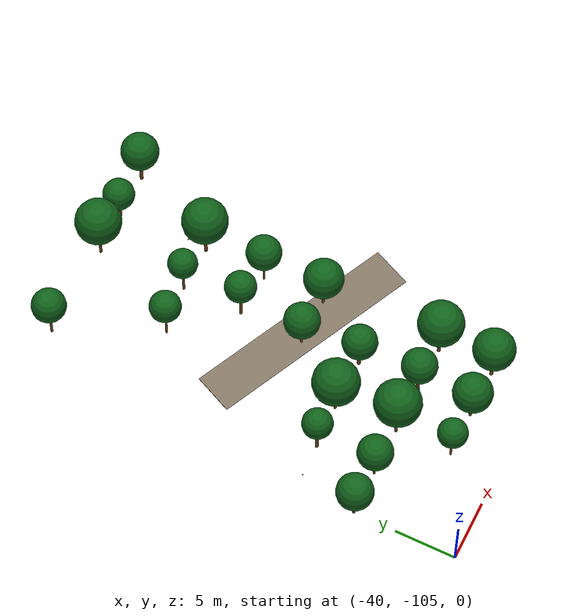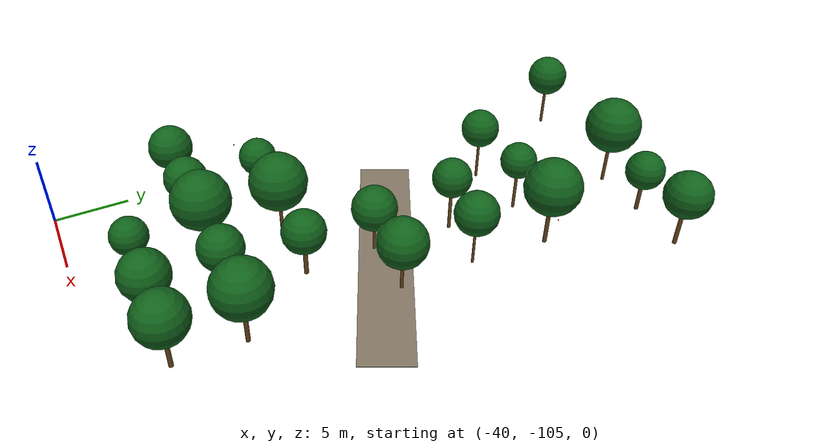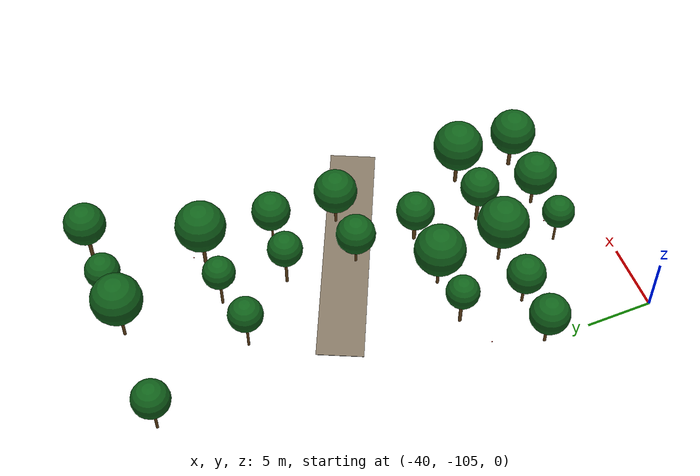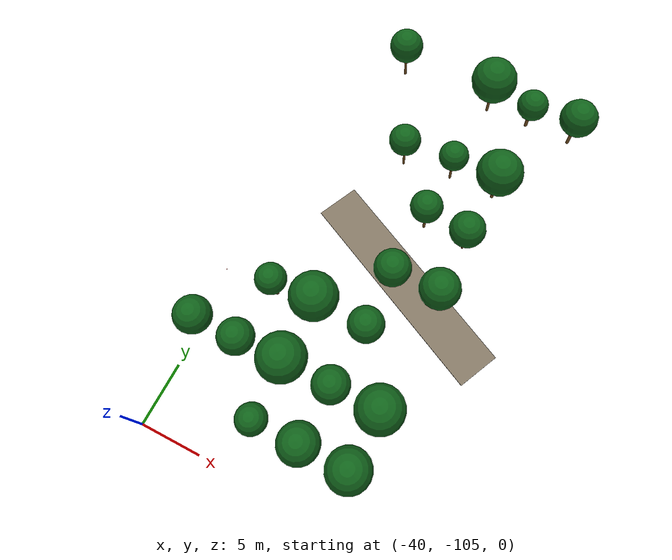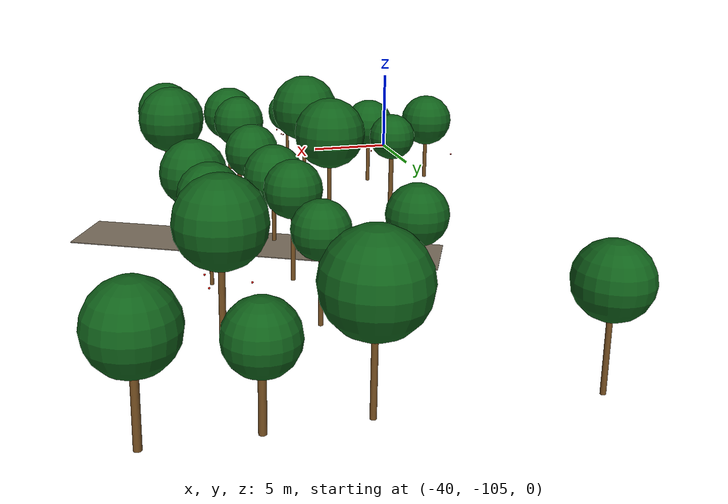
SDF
<sdf version="1.9">
 <world name="cheongsong_orchard">
  <model name="road_2">
   <static>true</static>
   <pose>-27.3 -86.1 0.02 0 0 -0.4392</pose>
   <link name="link">
    <collision name="collision">
     <geometry><box><size>18.2 3.5 0.04</size></box></geometry>
     <surface><friction><ode><mu>0.9</mu><mu2>0.9</mu2></ode></friction></surface>
    </collision>
    <visual name="visual">
     <geometry><box><size>18.2 3.5 0.04</size></box></geometry>
     <material><ambient>0.4 0.35 0.28 1</ambient><diffuse>0.5 0.45 0.38 1</diffuse></material>
    </visual>
   </link>
  </model>
  <model name="apple_tree_180">
   <static>true</static>
   <pose>-32.15 -101.06 0 0 0 0</pose>
   <link name="link">
    <collision name="trunk_col">
     <pose>0 0 1.18 0 0 0</pose>
     <geometry><cylinder><radius>0.088</radius><length>2.36</length></cylinder></geometry>
    </collision>
    <visual name="trunk_vis">
     <pose>0 0 1.18 0 0 0</pose>
     <geometry><cylinder><radius>0.088</radius><length>2.36</length></cylinder></geometry>
     <material><ambient>0.35 0.22 0.08 1</ambient><diffuse>0.45 0.30 0.12 1</diffuse></material>
    </visual>
    <collision name="canopy_col">
     <pose>0 0 3.57 0 0 0</pose>
     <geometry><sphere><radius>1.22</radius></sphere></geometry>
    </collision>
    <visual name="canopy_vis">
     <pose>0 0 3.57 0 0 0</pose>
     <geometry><sphere><radius>1.22</radius></sphere></geometry>
     <material><ambient>0.04 0.28 0.06 1</ambient><diffuse>0.06 0.38 0.10 1</diffuse></material>
    </visual>
   </link>
  </model>
  <model name="apple_tree_181">
   <static>true</static>
   <pose>-28.36 -101.02 0 0 0 0</pose>
   <link name="link">
    <collision name="trunk_col">
     <pose>0 0 1.01 0 0 0</pose>
     <geometry><cylinder><radius>0.124</radius><length>2.02</length></cylinder></geometry>
    </collision>
    <visual name="trunk_vis">
     <pose>0 0 1.01 0 0 0</pose>
     <geometry><cylinder><radius>0.124</radius><length>2.02</length></cylinder></geometry>
     <material><ambient>0.35 0.22 0.08 1</ambient><diffuse>0.45 0.30 0.12 1</diffuse></material>
    </visual>
    <collision name="canopy_col">
     <pose>0 0 3.65 0 0 0</pose>
     <geometry><sphere><radius>1.62</radius></sphere></geometry>
    </collision>
    <visual name="canopy_vis">
     <pose>0 0 3.65 0 0 0</pose>
     <geometry><sphere><radius>1.62</radius></sphere></geometry>
     <material><ambient>0.04 0.28 0.06 1</ambient><diffuse>0.06 0.38 0.10 1</diffuse></material>
    </visual>
   </link>
  </model>
  <model name="apple_tree_182">
   <static>true</static>
   <pose>-24.37 -101.02 0 0 0 0</pose>
   <link name="link">
    <collision name="trunk_col">
     <pose>0 0 1.15 0 0 0</pose>
     <geometry><cylinder><radius>0.147</radius><length>2.29</length></cylinder></geometry>
    </collision>
    <visual name="trunk_vis">
     <pose>0 0 1.15 0 0 0</pose>
     <geometry><cylinder><radius>0.147</radius><length>2.29</length></cylinder></geometry>
     <material><ambient>0.35 0.22 0.08 1</ambient><diffuse>0.45 0.30 0.12 1</diffuse></material>
    </visual>
    <collision name="canopy_col">
     <pose>0 0 4.01 0 0 0</pose>
     <geometry><sphere><radius>1.72</radius></sphere></geometry>
    </collision>
    <visual name="canopy_vis">
     <pose>0 0 4.01 0 0 0</pose>
     <geometry><sphere><radius>1.72</radius></sphere></geometry>
     <material><ambient>0.04 0.28 0.06 1</ambient><diffuse>0.06 0.38 0.10 1</diffuse></material>
    </visual>
   </link>
  </model>
  <model name="apple_tree_229">
   <static>true</static>
   <pose>-39.92 -96.47 0 0 0 0</pose>
   <link name="link">
    <collision name="trunk_col">
     <pose>0 0 1.05 0 0 0</pose>
     <geometry><cylinder><radius>0.111</radius><length>2.10</length></cylinder></geometry>
    </collision>
    <visual name="trunk_vis">
     <pose>0 0 1.05 0 0 0</pose>
     <geometry><cylinder><radius>0.111</radius><length>2.10</length></cylinder></geometry>
     <material><ambient>0.35 0.22 0.08 1</ambient><diffuse>0.45 0.30 0.12 1</diffuse></material>
    </visual>
    <collision name="canopy_col">
     <pose>0 0 3.60 0 0 0</pose>
     <geometry><sphere><radius>1.50</radius></sphere></geometry>
    </collision>
    <visual name="canopy_vis">
     <pose>0 0 3.60 0 0 0</pose>
     <geometry><sphere><radius>1.50</radius></sphere></geometry>
     <material><ambient>0.04 0.28 0.06 1</ambient><diffuse>0.06 0.38 0.10 1</diffuse></material>
    </visual>
   </link>
  </model>
  <model name="apple_tree_230">
   <static>true</static>
   <pose>-36.22 -96.44 0 0 0 0</pose>
   <link name="link">
    <collision name="trunk_col">
     <pose>0 0 1.04 0 0 0</pose>
     <geometry><cylinder><radius>0.106</radius><length>2.08</length></cylinder></geometry>
    </collision>
    <visual name="trunk_vis">
     <pose>0 0 1.04 0 0 0</pose>
     <geometry><cylinder><radius>0.106</radius><length>2.08</length></cylinder></geometry>
     <material><ambient>0.35 0.22 0.08 1</ambient><diffuse>0.45 0.30 0.12 1</diffuse></material>
    </visual>
    <collision name="canopy_col">
     <pose>0 0 3.54 0 0 0</pose>
     <geometry><sphere><radius>1.45</radius></sphere></geometry>
    </collision>
    <visual name="canopy_vis">
     <pose>0 0 3.54 0 0 0</pose>
     <geometry><sphere><radius>1.45</radius></sphere></geometry>
     <material><ambient>0.04 0.28 0.06 1</ambient><diffuse>0.06 0.38 0.10 1</diffuse></material>
    </visual>
   </link>
  </model>
  <model name="apple_tree_231">
   <static>true</static>
   <pose>-32.19 -96.42 0 0 0 0</pose>
   <link name="link">
    <collision name="trunk_col">
     <pose>0 0 1.39 0 0 0</pose>
     <geometry><cylinder><radius>0.112</radius><length>2.78</length></cylinder></geometry>
    </collision>
    <visual name="trunk_vis">
     <pose>0 0 1.39 0 0 0</pose>
     <geometry><cylinder><radius>0.112</radius><length>2.78</length></cylinder></geometry>
     <material><ambient>0.35 0.22 0.08 1</ambient><diffuse>0.45 0.30 0.12 1</diffuse></material>
    </visual>
    <collision name="canopy_col">
     <pose>0 0 4.70 0 0 0</pose>
     <geometry><sphere><radius>1.92</radius></sphere></geometry>
    </collision>
    <visual name="canopy_vis">
     <pose>0 0 4.70 0 0 0</pose>
     <geometry><sphere><radius>1.92</radius></sphere></geometry>
     <material><ambient>0.04 0.28 0.06 1</ambient><diffuse>0.06 0.38 0.10 1</diffuse></material>
    </visual>
   </link>
  </model>
  <model name="apple_tree_232">
   <static>true</static>
   <pose>-28.22 -96.44 0 0 0 0</pose>
   <link name="link">
    <collision name="trunk_col">
     <pose>0 0 1.31 0 0 0</pose>
     <geometry><cylinder><radius>0.139</radius><length>2.61</length></cylinder></geometry>
    </collision>
    <visual name="trunk_vis">
     <pose>0 0 1.31 0 0 0</pose>
     <geometry><cylinder><radius>0.139</radius><length>2.61</length></cylinder></geometry>
     <material><ambient>0.35 0.22 0.08 1</ambient><diffuse>0.45 0.30 0.12 1</diffuse></material>
    </visual>
    <collision name="canopy_col">
     <pose>0 0 4.07 0 0 0</pose>
     <geometry><sphere><radius>1.46</radius></sphere></geometry>
    </collision>
    <visual name="canopy_vis">
     <pose>0 0 4.07 0 0 0</pose>
     <geometry><sphere><radius>1.46</radius></sphere></geometry>
     <material><ambient>0.04 0.28 0.06 1</ambient><diffuse>0.06 0.38 0.10 1</diffuse></material>
    </visual>
   </link>
  </model>
  <model name="apple_tree_233">
   <static>true</static>
   <pose>-24.28 -96.45 0 0 0 0</pose>
   <link name="link">
    <collision name="trunk_col">
     <pose>0 0 1.24 0 0 0</pose>
     <geometry><cylinder><radius>0.142</radius><length>2.48</length></cylinder></geometry>
    </collision>
    <visual name="trunk_vis">
     <pose>0 0 1.24 0 0 0</pose>
     <geometry><cylinder><radius>0.142</radius><length>2.48</length></cylinder></geometry>
     <material><ambient>0.35 0.22 0.08 1</ambient><diffuse>0.45 0.30 0.12 1</diffuse></material>
    </visual>
    <collision name="canopy_col">
     <pose>0 0 4.36 0 0 0</pose>
     <geometry><sphere><radius>1.88</radius></sphere></geometry>
    </collision>
    <visual name="canopy_vis">
     <pose>0 0 4.36 0 0 0</pose>
     <geometry><sphere><radius>1.88</radius></sphere></geometry>
     <material><ambient>0.04 0.28 0.06 1</ambient><diffuse>0.06 0.38 0.10 1</diffuse></material>
    </visual>
   </link>
  </model>
  <model name="apple_tree_281">
   <static>true</static>
   <pose>-36.06 -91.48 0 0 0 0</pose>
   <link name="link">
    <collision name="trunk_col">
     <pose>0 0 1.29 0 0 0</pose>
     <geometry><cylinder><radius>0.128</radius><length>2.59</length></cylinder></geometry>
    </collision>
    <visual name="trunk_vis">
     <pose>0 0 1.29 0 0 0</pose>
     <geometry><cylinder><radius>0.128</radius><length>2.59</length></cylinder></geometry>
     <material><ambient>0.35 0.22 0.08 1</ambient><diffuse>0.45 0.30 0.12 1</diffuse></material>
    </visual>
    <collision name="canopy_col">
     <pose>0 0 3.84 0 0 0</pose>
     <geometry><sphere><radius>1.25</radius></sphere></geometry>
    </collision>
    <visual name="canopy_vis">
     <pose>0 0 3.84 0 0 0</pose>
     <geometry><sphere><radius>1.25</radius></sphere></geometry>
     <material><ambient>0.04 0.28 0.06 1</ambient><diffuse>0.06 0.38 0.10 1</diffuse></material>
    </visual>
   </link>
  </model>
  <model name="apple_tree_282">
   <static>true</static>
   <pose>-32.42 -91.31 0 0 0 0</pose>
   <link name="link">
    <collision name="trunk_col">
     <pose>0 0 1.17 0 0 0</pose>
     <geometry><cylinder><radius>0.115</radius><length>2.35</length></cylinder></geometry>
    </collision>
    <visual name="trunk_vis">
     <pose>0 0 1.17 0 0 0</pose>
     <geometry><cylinder><radius>0.115</radius><length>2.35</length></cylinder></geometry>
     <material><ambient>0.35 0.22 0.08 1</ambient><diffuse>0.45 0.30 0.12 1</diffuse></material>
    </visual>
    <collision name="canopy_col">
     <pose>0 0 4.26 0 0 0</pose>
     <geometry><sphere><radius>1.92</radius></sphere></geometry>
    </collision>
    <visual name="canopy_vis">
     <pose>0 0 4.26 0 0 0</pose>
     <geometry><sphere><radius>1.92</radius></sphere></geometry>
     <material><ambient>0.04 0.28 0.06 1</ambient><diffuse>0.06 0.38 0.10 1</diffuse></material>
    </visual>
   </link>
  </model>
  <model name="apple_tree_283">
   <static>true</static>
   <pose>-28.07 -91.30 0 0 0 0</pose>
   <link name="link">
    <collision name="trunk_col">
     <pose>0 0 1.03 0 0 0</pose>
     <geometry><cylinder><radius>0.144</radius><length>2.06</length></cylinder></geometry>
    </collision>
    <visual name="trunk_vis">
     <pose>0 0 1.03 0 0 0</pose>
     <geometry><cylinder><radius>0.144</radius><length>2.06</length></cylinder></geometry>
     <material><ambient>0.35 0.22 0.08 1</ambient><diffuse>0.45 0.30 0.12 1</diffuse></material>
    </visual>
    <collision name="canopy_col">
     <pose>0 0 3.50 0 0 0</pose>
     <geometry><sphere><radius>1.44</radius></sphere></geometry>
    </collision>
    <visual name="canopy_vis">
     <pose>0 0 3.50 0 0 0</pose>
     <geometry><sphere><radius>1.44</radius></sphere></geometry>
     <material><ambient>0.04 0.28 0.06 1</ambient><diffuse>0.06 0.38 0.10 1</diffuse></material>
    </visual>
   </link>
  </model>
  <model name="apple_tree_337">
   <static>true</static>
   <pose>-28.30 -86.43 0 0 0 0</pose>
   <link name="link">
    <collision name="trunk_col">
     <pose>0 0 0.98 0 0 0</pose>
     <geometry><cylinder><radius>0.102</radius><length>1.96</length></cylinder></geometry>
    </collision>
    <visual name="trunk_vis">
     <pose>0 0 0.98 0 0 0</pose>
     <geometry><cylinder><radius>0.102</radius><length>1.96</length></cylinder></geometry>
     <material><ambient>0.35 0.22 0.08 1</ambient><diffuse>0.45 0.30 0.12 1</diffuse></material>
    </visual>
    <collision name="canopy_col">
     <pose>0 0 3.44 0 0 0</pose>
     <geometry><sphere><radius>1.49</radius></sphere></geometry>
    </collision>
    <visual name="canopy_vis">
     <pose>0 0 3.44 0 0 0</pose>
     <geometry><sphere><radius>1.49</radius></sphere></geometry>
     <material><ambient>0.04 0.28 0.06 1</ambient><diffuse>0.06 0.38 0.10 1</diffuse></material>
    </visual>
   </link>
  </model>
  <model name="apple_tree_338">
   <static>true</static>
   <pose>-24.33 -86.41 0 0 0 0</pose>
   <link name="link">
    <collision name="trunk_col">
     <pose>0 0 1.07 0 0 0</pose>
     <geometry><cylinder><radius>0.111</radius><length>2.13</length></cylinder></geometry>
    </collision>
    <visual name="trunk_vis">
     <pose>0 0 1.07 0 0 0</pose>
     <geometry><cylinder><radius>0.111</radius><length>2.13</length></cylinder></geometry>
     <material><ambient>0.35 0.22 0.08 1</ambient><diffuse>0.45 0.30 0.12 1</diffuse></material>
    </visual>
    <collision name="canopy_col">
     <pose>0 0 3.78 0 0 0</pose>
     <geometry><sphere><radius>1.64</radius></sphere></geometry>
    </collision>
    <visual name="canopy_vis">
     <pose>0 0 3.78 0 0 0</pose>
     <geometry><sphere><radius>1.64</radius></sphere></geometry>
     <material><ambient>0.04 0.28 0.06 1</ambient><diffuse>0.06 0.38 0.10 1</diffuse></material>
    </visual>
   </link>
  </model>
  <model name="apple_tree_391">
   <static>true</static>
   <pose>-28.07 -81.00 0 0 0 0</pose>
   <link name="link">
    <collision name="trunk_col">
     <pose>0 0 1.46 0 0 0</pose>
     <geometry><cylinder><radius>0.110</radius><length>2.91</length></cylinder></geometry>
    </collision>
    <visual name="trunk_vis">
     <pose>0 0 1.46 0 0 0</pose>
     <geometry><cylinder><radius>0.110</radius><length>2.91</length></cylinder></geometry>
     <material><ambient>0.35 0.22 0.08 1</ambient><diffuse>0.45 0.30 0.12 1</diffuse></material>
    </visual>
    <collision name="canopy_col">
     <pose>0 0 4.22 0 0 0</pose>
     <geometry><sphere><radius>1.31</radius></sphere></geometry>
    </collision>
    <visual name="canopy_vis">
     <pose>0 0 4.22 0 0 0</pose>
     <geometry><sphere><radius>1.31</radius></sphere></geometry>
     <material><ambient>0.04 0.28 0.06 1</ambient><diffuse>0.06 0.38 0.10 1</diffuse></material>
    </visual>
   </link>
  </model>
  <model name="apple_tree_392">
   <static>true</static>
   <pose>-24.45 -81.26 0 0 0 0</pose>
   <link name="link">
    <collision name="trunk_col">
     <pose>0 0 1.33 0 0 0</pose>
     <geometry><cylinder><radius>0.087</radius><length>2.66</length></cylinder></geometry>
    </collision>
    <visual name="trunk_vis">
     <pose>0 0 1.33 0 0 0</pose>
     <geometry><cylinder><radius>0.087</radius><length>2.66</length></cylinder></geometry>
     <material><ambient>0.35 0.22 0.08 1</ambient><diffuse>0.45 0.30 0.12 1</diffuse></material>
    </visual>
    <collision name="canopy_col">
     <pose>0 0 4.11 0 0 0</pose>
     <geometry><sphere><radius>1.45</radius></sphere></geometry>
    </collision>
    <visual name="canopy_vis">
     <pose>0 0 4.11 0 0 0</pose>
     <geometry><sphere><radius>1.45</radius></sphere></geometry>
     <material><ambient>0.04 0.28 0.06 1</ambient><diffuse>0.06 0.38 0.10 1</diffuse></material>
    </visual>
   </link>
  </model>
  <model name="apple_tree_448">
   <static>true</static>
   <pose>-32.17 -76.49 0 0 0 0</pose>
   <link name="link">
    <collision name="trunk_col">
     <pose>0 0 1.42 0 0 0</pose>
     <geometry><cylinder><radius>0.094</radius><length>2.84</length></cylinder></geometry>
    </collision>
    <visual name="trunk_vis">
     <pose>0 0 1.42 0 0 0</pose>
     <geometry><cylinder><radius>0.094</radius><length>2.84</length></cylinder></geometry>
     <material><ambient>0.35 0.22 0.08 1</ambient><diffuse>0.45 0.30 0.12 1</diffuse></material>
    </visual>
    <collision name="canopy_col">
     <pose>0 0 4.15 0 0 0</pose>
     <geometry><sphere><radius>1.30</radius></sphere></geometry>
    </collision>
    <visual name="canopy_vis">
     <pose>0 0 4.15 0 0 0</pose>
     <geometry><sphere><radius>1.30</radius></sphere></geometry>
     <material><ambient>0.04 0.28 0.06 1</ambient><diffuse>0.06 0.38 0.10 1</diffuse></material>
    </visual>
   </link>
  </model>
  <model name="apple_tree_449">
   <static>true</static>
   <pose>-28.06 -75.94 0 0 0 0</pose>
   <link name="link">
    <collision name="trunk_col">
     <pose>0 0 1.39 0 0 0</pose>
     <geometry><cylinder><radius>0.103</radius><length>2.77</length></cylinder></geometry>
    </collision>
    <visual name="trunk_vis">
     <pose>0 0 1.39 0 0 0</pose>
     <geometry><cylinder><radius>0.103</radius><length>2.77</length></cylinder></geometry>
     <material><ambient>0.35 0.22 0.08 1</ambient><diffuse>0.45 0.30 0.12 1</diffuse></material>
    </visual>
    <collision name="canopy_col">
     <pose>0 0 3.99 0 0 0</pose>
     <geometry><sphere><radius>1.22</radius></sphere></geometry>
    </collision>
    <visual name="canopy_vis">
     <pose>0 0 3.99 0 0 0</pose>
     <geometry><sphere><radius>1.22</radius></sphere></geometry>
     <material><ambient>0.04 0.28 0.06 1</ambient><diffuse>0.06 0.38 0.10 1</diffuse></material>
    </visual>
   </link>
  </model>
  <model name="apple_tree_450">
   <static>true</static>
   <pose>-24.14 -75.94 0 0 0 0</pose>
   <link name="link">
    <collision name="trunk_col">
     <pose>0 0 1.35 0 0 0</pose>
     <geometry><cylinder><radius>0.139</radius><length>2.71</length></cylinder></geometry>
    </collision>
    <visual name="trunk_vis">
     <pose>0 0 1.35 0 0 0</pose>
     <geometry><cylinder><radius>0.139</radius><length>2.71</length></cylinder></geometry>
     <material><ambient>0.35 0.22 0.08 1</ambient><diffuse>0.45 0.30 0.12 1</diffuse></material>
    </visual>
    <collision name="canopy_col">
     <pose>0 0 4.59 0 0 0</pose>
     <geometry><sphere><radius>1.89</radius></sphere></geometry>
    </collision>
    <visual name="canopy_vis">
     <pose>0 0 4.59 0 0 0</pose>
     <geometry><sphere><radius>1.89</radius></sphere></geometry>
     <material><ambient>0.04 0.28 0.06 1</ambient><diffuse>0.06 0.38 0.10 1</diffuse></material>
    </visual>
   </link>
  </model>
  <model name="apple_tree_506">
   <static>true</static>
   <pose>-36.04 -68.31 0 0 0 0</pose>
   <link name="link">
    <collision name="trunk_col">
     <pose>0 0 1.36 0 0 0</pose>
     <geometry><cylinder><radius>0.103</radius><length>2.72</length></cylinder></geometry>
    </collision>
    <visual name="trunk_vis">
     <pose>0 0 1.36 0 0 0</pose>
     <geometry><cylinder><radius>0.103</radius><length>2.72</length></cylinder></geometry>
     <material><ambient>0.35 0.22 0.08 1</ambient><diffuse>0.45 0.30 0.12 1</diffuse></material>
    </visual>
    <collision name="canopy_col">
     <pose>0 0 4.13 0 0 0</pose>
     <geometry><sphere><radius>1.41</radius></sphere></geometry>
    </collision>
    <visual name="canopy_vis">
     <pose>0 0 4.13 0 0 0</pose>
     <geometry><sphere><radius>1.41</radius></sphere></geometry>
     <material><ambient>0.04 0.28 0.06 1</ambient><diffuse>0.06 0.38 0.10 1</diffuse></material>
    </visual>
   </link>
  </model>
  <model name="apple_tree_508">
   <static>true</static>
   <pose>-27.92 -68.45 0 0 0 0</pose>
   <link name="link">
    <collision name="trunk_col">
     <pose>0 0 1.41 0 0 0</pose>
     <geometry><cylinder><radius>0.115</radius><length>2.82</length></cylinder></geometry>
    </collision>
    <visual name="trunk_vis">
     <pose>0 0 1.41 0 0 0</pose>
     <geometry><cylinder><radius>0.115</radius><length>2.82</length></cylinder></geometry>
     <material><ambient>0.35 0.22 0.08 1</ambient><diffuse>0.45 0.30 0.12 1</diffuse></material>
    </visual>
    <collision name="canopy_col">
     <pose>0 0 4.71 0 0 0</pose>
     <geometry><sphere><radius>1.89</radius></sphere></geometry>
    </collision>
    <visual name="canopy_vis">
     <pose>0 0 4.71 0 0 0</pose>
     <geometry><sphere><radius>1.89</radius></sphere></geometry>
     <material><ambient>0.04 0.28 0.06 1</ambient><diffuse>0.06 0.38 0.10 1</diffuse></material>
    </visual>
   </link>
  </model>
  <model name="apple_tree_509">
   <static>true</static>
   <pose>-24.26 -68.31 0 0 0 0</pose>
   <link name="link">
    <collision name="trunk_col">
     <pose>0 0 1.00 0 0 0</pose>
     <geometry><cylinder><radius>0.140</radius><length>2.00</length></cylinder></geometry>
    </collision>
    <visual name="trunk_vis">
     <pose>0 0 1.00 0 0 0</pose>
     <geometry><cylinder><radius>0.140</radius><length>2.00</length></cylinder></geometry>
     <material><ambient>0.35 0.22 0.08 1</ambient><diffuse>0.45 0.30 0.12 1</diffuse></material>
    </visual>
    <collision name="canopy_col">
     <pose>0 0 3.31 0 0 0</pose>
     <geometry><sphere><radius>1.31</radius></sphere></geometry>
    </collision>
    <visual name="canopy_vis">
     <pose>0 0 3.31 0 0 0</pose>
     <geometry><sphere><radius>1.31</radius></sphere></geometry>
     <material><ambient>0.04 0.28 0.06 1</ambient><diffuse>0.06 0.38 0.10 1</diffuse></material>
    </visual>
   </link>
  </model>
  <model name="apple_tree_510">
   <static>true</static>
   <pose>-20.37 -68.24 0 0 0 0</pose>
   <link name="link">
    <collision name="trunk_col">
     <pose>0 0 1.25 0 0 0</pose>
     <geometry><cylinder><radius>0.143</radius><length>2.51</length></cylinder></geometry>
    </collision>
    <visual name="trunk_vis">
     <pose>0 0 1.25 0 0 0</pose>
     <geometry><cylinder><radius>0.143</radius><length>2.51</length></cylinder></geometry>
     <material><ambient>0.35 0.22 0.08 1</ambient><diffuse>0.45 0.30 0.12 1</diffuse></material>
    </visual>
    <collision name="canopy_col">
     <pose>0 0 4.07 0 0 0</pose>
     <geometry><sphere><radius>1.57</radius></sphere></geometry>
    </collision>
    <visual name="canopy_vis">
     <pose>0 0 4.07 0 0 0</pose>
     <geometry><sphere><radius>1.57</radius></sphere></geometry>
     <material><ambient>0.04 0.28 0.06 1</ambient><diffuse>0.06 0.38 0.10 1</diffuse></material>
    </visual>
   </link>
  </model>
  <model name="apple_180_0">
   <static>true</static>
   <pose>-31.70 -100.24 2.26 0 0 0</pose>
   <link name="link">
    <visual name="visual">
     <geometry><sphere><radius>0.04</radius></sphere></geometry>
     <material><ambient>0.7 0.05 0.02 1</ambient><diffuse>0.9 0.10 0.05 1</diffuse></material>
    </visual>
   </link>
  </model>
  <model name="apple_180_2">
   <static>true</static>
   <pose>-31.68 -100.70 2.21 0 0 0</pose>
   <link name="link">
    <visual name="visual">
     <geometry><sphere><radius>0.04</radius></sphere></geometry>
     <material><ambient>0.7 0.05 0.02 1</ambient><diffuse>0.9 0.10 0.05 1</diffuse></material>
    </visual>
   </link>
  </model>
  <model name="apple_180_3">
   <static>true</static>
   <pose>-31.37 -100.64 2.51 0 0 0</pose>
   <link name="link">
    <visual name="visual">
     <geometry><sphere><radius>0.04</radius></sphere></geometry>
     <material><ambient>0.7 0.05 0.02 1</ambient><diffuse>0.9 0.10 0.05 1</diffuse></material>
    </visual>
   </link>
  </model>
  <model name="apple_230_0">
   <static>true</static>
   <pose>-36.22 -96.05 2.25 0 0 0</pose>
   <link name="link">
    <visual name="visual">
     <geometry><sphere><radius>0.04</radius></sphere></geometry>
     <material><ambient>0.7 0.05 0.02 1</ambient><diffuse>0.9 0.10 0.05 1</diffuse></material>
    </visual>
   </link>
  </model>
  <model name="apple_230_1">
   <static>true</static>
   <pose>-36.86 -96.44 2.07 0 0 0</pose>
   <link name="link">
    <visual name="visual">
     <geometry><sphere><radius>0.04</radius></sphere></geometry>
     <material><ambient>0.7 0.05 0.02 1</ambient><diffuse>0.9 0.10 0.05 1</diffuse></material>
    </visual>
   </link>
  </model>
  <model name="apple_230_2">
   <static>true</static>
   <pose>-36.26 -95.92 1.96 0 0 0</pose>
   <link name="link">
    <visual name="visual">
     <geometry><sphere><radius>0.04</radius></sphere></geometry>
     <material><ambient>0.7 0.05 0.02 1</ambient><diffuse>0.9 0.10 0.05 1</diffuse></material>
    </visual>
   </link>
  </model>
  <model name="apple_230_3">
   <static>true</static>
   <pose>-35.68 -96.46 2.43 0 0 0</pose>
   <link name="link">
    <visual name="visual">
     <geometry><sphere><radius>0.04</radius></sphere></geometry>
     <material><ambient>0.7 0.05 0.02 1</ambient><diffuse>0.9 0.10 0.05 1</diffuse></material>
    </visual>
   </link>
  </model>
  <model name="apple_280_0">
   <static>true</static>
   <pose>-39.86 -92.08 2.48 0 0 0</pose>
   <link name="link">
    <visual name="visual">
     <geometry><sphere><radius>0.04</radius></sphere></geometry>
     <material><ambient>0.7 0.05 0.02 1</ambient><diffuse>0.9 0.10 0.05 1</diffuse></material>
    </visual>
   </link>
  </model>
  <model name="apple_450_0">
   <static>true</static>
   <pose>-25.15 -74.91 2.47 0 0 0</pose>
   <link name="link">
    <visual name="visual">
     <geometry><sphere><radius>0.04</radius></sphere></geometry>
     <material><ambient>0.7 0.05 0.02 1</ambient><diffuse>0.9 0.10 0.05 1</diffuse></material>
    </visual>
   </link>
  </model>
  <model name="apple_450_1">
   <static>true</static>
   <pose>-23.60 -75.54 2.13 0 0 0</pose>
   <link name="link">
    <visual name="visual">
     <geometry><sphere><radius>0.04</radius></sphere></geometry>
     <material><ambient>0.7 0.05 0.02 1</ambient><diffuse>0.9 0.10 0.05 1</diffuse></material>
    </visual>
   </link>
  </model>
  <model name="apple_450_2">
   <static>true</static>
   <pose>-23.34 -74.73 3.00 0 0 0</pose>
   <link name="link">
    <visual name="visual">
     <geometry><sphere><radius>0.04</radius></sphere></geometry>
     <material><ambient>0.7 0.05 0.02 1</ambient><diffuse>0.9 0.10 0.05 1</diffuse></material>
    </visual>
   </link>
  </model>
 </world>
</sdf>
